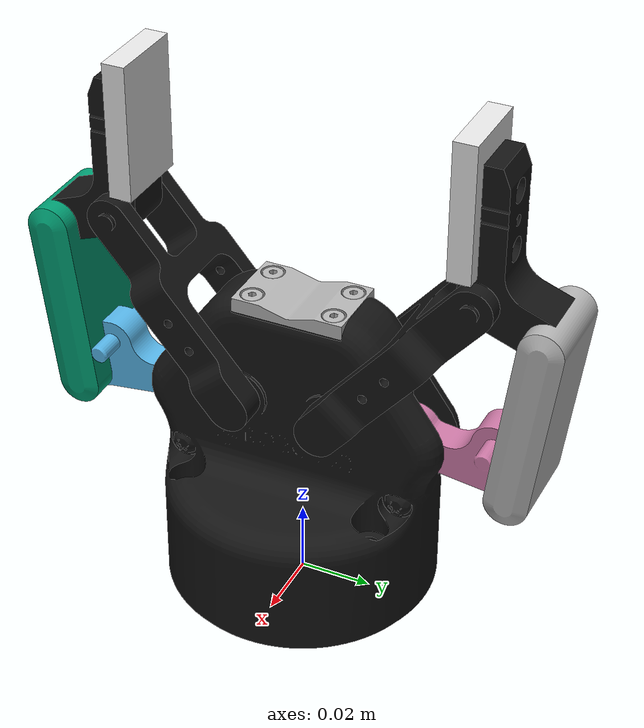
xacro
<?xml version="1.0"?>

<robot name="Robotiq85" xmlns:xacro="http://www.ros.org/wiki/xacro">

  <xacro:arg name="type" default="85"/>

  <!-- 根据type参数决定使用哪种夹爪 -->
  <xacro:if value="${'$(arg type)' == '85'}">
    <xacro:include filename="$(find robotiq_description)/xacro/robotiq85.xacro"/>
    <xacro:Robotiq85 name=""/>
  </xacro:if>
</robot>

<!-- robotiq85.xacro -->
<robot xmlns:xacro="http://www.ros.org/wiki/xacro">
  <xacro:macro name="Robotiq85" params="name">
    <xacro:property name="prefix" value="${name + '_' if name else ''}"/>
    <link name="${prefix}base_link">
      <inertial>
        <origin xyz="8.625E-08 -4.6583E-06 0.03145"/>
        <mass value="0.22652"/>
        <inertia ixx="0.00020005" ixy="-4.2442E-10" ixz="-2.9069E-10" iyy="0.00017832" iyz="-3.4402E-08"
                 izz="0.00013478"/>
      </inertial>
      <visual>
        <geometry>
          <mesh filename="file://$(find robotiq_description)/meshes/robotiq85/visual/base_link.dae"/>
        </geometry>
      </visual>
      <collision>
        <geometry>
          <mesh filename="file://$(find robotiq_description)/meshes/robotiq85/collision/base_link.stl"/>
        </geometry>
        <material name="black">
          <color rgba="0.1 0.1 0.1 1"/>
        </material>
      </collision>
    </link>

    <link name="left_outer_knuckle">
      <inertial>
        <origin xyz="-0.000200000000003065 0.0199435877845359 0.0292245259211331"/>
        <mass value="0.00853198276973456"/>
        <inertia ixx="2.89328108496468E-06" ixy="-1.57935047237397E-19" ixz="-1.93980378593255E-19"
                 iyy="1.86719750325683E-06" iyz="-1.21858577871576E-06" izz="1.21905238907251E-06"/>
      </inertial>
      <visual>
        <geometry>
          <mesh filename="file://$(find robotiq_description)/meshes/robotiq85/visual/outer_knuckle.dae"/>
        </geometry>
      </visual>
      <collision>
        <geometry>
          <mesh filename="file://$(find robotiq_description)/meshes/robotiq85/collision/outer_knuckle.dae"/>
        </geometry>
      </collision>
    </link>

    <link name="left_outer_finger">
      <inertial>
        <origin xyz="0.00030115855001899 0.0373907951953854 -0.0208027427000385"/>
        <mass value="0.022614240507152"/>
        <inertia ixx="1.52518312458174E-05" ixy="9.76583423954399E-10" ixz="-5.43838577022588E-10"
                 iyy="6.17694243867776E-06" iyz="6.78636130740228E-06" izz="1.16494917907219E-05"/>
      </inertial>
      <visual>
        <geometry>
          <mesh filename="file://$(find robotiq_description)/meshes/robotiq85/visual/outer_finger.dae"/>
        </geometry>
      </visual>
      <collision>
        <geometry>
          <mesh filename="file://$(find robotiq_description)/meshes/robotiq85/collision/outer_finger.dae"/>
        </geometry>
      </collision>
    </link>

    <link name="left_inner_finger">
      <inertial>
        <origin xyz="0.000299999999999317 0.0160078233491243 -0.0136945669206257"/>
        <mass value="0.0104003125914103"/>
        <inertia ixx="2.71909453810972E-06" ixy="1.35402465472579E-21" ixz="-7.1817349065269E-22"
                 iyy="7.69100314106116E-07" iyz="6.74715432769696E-07" izz="2.30315190420171E-06"/>
      </inertial>
      <visual>
        <geometry>
          <mesh filename="file://$(find robotiq_description)/meshes/robotiq85/visual/inner_finger.dae"/>
        </geometry>
      </visual>
      <collision>
        <geometry>
          <mesh filename="file://$(find robotiq_description)/meshes/robotiq85/collision/inner_finger.dae"/>
        </geometry>
      </collision>
    </link>
    <link name="left_inner_finger_pad">
      <visual>
        <geometry>
          <box size="0.022 0.00635 0.0375"/>
        </geometry>
        <material name="white">
          <color rgba="0.9 0.9 0.9 1"/>
        </material>
      </visual>
      <collision>
        <geometry>
          <box size="0.022 0.00635 0.0375"/>
        </geometry>
      </collision>
    </link>

    <link name="left_inner_knuckle">
      <inertial>
        <origin xyz="0.000123011831763771 0.0507850843201817 0.00103968640075166"/>
        <mass value="0.0271177346495152"/>
        <inertia ixx="2.61910379223783E-05" ixy="-2.43616858946494E-07" ixz="-6.37789906117123E-09"
                 iyy="2.8270243746167E-06" iyz="-5.37200748039765E-07" izz="2.83695868220296E-05"/>
      </inertial>
      <visual>
        <geometry>
          <mesh filename="file://$(find robotiq_description)/meshes/robotiq85/visual/inner_knuckle.dae"/>
        </geometry>
      </visual>
      <collision>
        <geometry>
          <mesh filename="file://$(find robotiq_description)/meshes/robotiq85/collision/inner_knuckle.dae"/>
        </geometry>
      </collision>
    </link>

    <link name="right_outer_knuckle">
      <inertial>
        <origin xyz="-0.000200000000003065 0.0199435877845359 0.0292245259211331"/>
        <mass value="0.00853198276973456"/>
        <inertia ixx="2.89328108496468E-06" ixy="-1.57935047237397E-19" ixz="-1.93980378593255E-19"
                 iyy="1.86719750325683E-06" iyz="-1.21858577871576E-06" izz="1.21905238907251E-06"/>
      </inertial>
      <visual>
        <geometry>
          <mesh filename="file://$(find robotiq_description)/meshes/robotiq85/visual/outer_knuckle.dae"/>
        </geometry>
      </visual>
      <collision>
        <geometry>
          <mesh filename="file://$(find robotiq_description)/meshes/robotiq85/collision/outer_knuckle.dae"/>
        </geometry>
      </collision>
    </link>

    <link name="right_outer_finger">
      <inertial>
        <origin xyz="0.00030115855001899 0.0373907951953854 -0.0208027427000385"/>
        <mass value="0.022614240507152"/>
        <inertia ixx="1.52518312458174E-05" ixy="9.76583423954399E-10" ixz="-5.43838577022588E-10"
                 iyy="6.17694243867776E-06" iyz="6.78636130740228E-06" izz="1.16494917907219E-05"/>
      </inertial>
      <visual>
        <geometry>
          <mesh filename="file://$(find robotiq_description)/meshes/robotiq85/visual/outer_finger.dae"/>
        </geometry>
      </visual>
      <collision>
        <geometry>
          <mesh filename="file://$(find robotiq_description)/meshes/robotiq85/collision/outer_finger.dae"/>
        </geometry>
      </collision>
    </link>

    <link name="right_inner_finger">
      <inertial>
        <origin xyz="0.000299999999999317 0.0160078233491243 -0.0136945669206257"/>
        <mass value="0.0104003125914103"/>
        <inertia ixx="2.71909453810972E-06" ixy="1.35402465472579E-21" ixz="-7.1817349065269E-22"
                 iyy="7.69100314106116E-07" iyz="6.74715432769696E-07" izz="2.30315190420171E-06"/>
      </inertial>
      <visual>
        <geometry>
          <mesh filename="file://$(find robotiq_description)/meshes/robotiq85/visual/inner_finger.dae"/>
        </geometry>
      </visual>
      <collision>
        <geometry>
          <mesh filename="file://$(find robotiq_description)/meshes/robotiq85/collision/inner_finger.dae"/>
        </geometry>
      </collision>
    </link>

    <link name="right_inner_finger_pad">
      <visual>
        <geometry>
          <box size="0.022 0.00635 0.0375"/>
        </geometry>
        <material name="white">
          <color rgba="0.9 0.9 0.9 1"/>
        </material>
      </visual>
      <collision>
        <geometry>
          <box size="0.022 0.00635 0.0375"/>
        </geometry>
      </collision>
    </link>

    <link name="right_inner_knuckle">
      <inertial>
        <origin xyz="0.000123011831763771 0.0507850843201817 0.00103968640075166"/>
        <mass value="0.0271177346495152"/>
        <inertia ixx="2.61910379223783E-05" ixy="-2.43616858946494E-07" ixz="-6.37789906117123E-09"
                 iyy="2.8270243746167E-06" iyz="-5.37200748039765E-07" izz="2.83695868220296E-05"/>
      </inertial>
      <visual>
        <geometry>
          <mesh filename="file://$(find robotiq_description)/meshes/robotiq85/visual/inner_knuckle.dae"/>
        </geometry>
      </visual>
      <collision>
        <geometry>
          <mesh filename="file://$(find robotiq_description)/meshes/robotiq85/collision/inner_knuckle.dae"/>
        </geometry>
      </collision>
    </link>

    <!-- Main actuated joint - left outer knuckle -->
    <joint name="finger_joint" type="revolute">
      <origin rpy="0 0 3.14159265359" xyz="0 -0.0306011 0.054904"/>
      <parent link="${prefix}base_link"/>
      <child link="left_outer_knuckle"/>
      <axis xyz="1 0 0"/>
      <limit effort="1000" lower="0" upper="0.81" velocity="2.0"/>
    </joint>

    <joint name="left_outer_finger_joint" type="fixed">
      <origin xyz="0 0.0315 -0.0041"/>
      <parent link="left_outer_knuckle"/>
      <child link="left_outer_finger"/>
      <axis xyz="1 0 0"/>
    </joint>

    <!-- Left inner knuckle mimics the outer knuckle with a mechanical coupling -->
    <joint name="left_inner_knuckle_joint" type="revolute">
      <origin rpy="0 0 3.14159265359" xyz="0 -0.0127 0.06142"/>
      <parent link="${prefix}base_link"/>
      <child link="left_inner_knuckle"/>
      <axis xyz="1 0 0"/>
      <limit effort="1000" lower="0" upper="0.8757" velocity="2.0"/>
      <mimic joint="finger_joint" multiplier="1" offset="0"/>
    </joint>

    <!-- Left inner finger has opposite motion to simulate the mechanical linkage -->
    <joint name="left_inner_finger_joint" type="revolute">
      <origin xyz="0 0.0061 0.0471"/>
      <parent link="left_outer_finger"/>
      <child link="left_inner_finger"/>
      <axis xyz="1 0 0"/>
      <limit effort="1000" lower="-0.8757" upper="0" velocity="2.0"/>
      <mimic joint="finger_joint" multiplier="-1" offset="0"/>
    </joint>

    <joint name="left_inner_finger_pad_joint" type="fixed">
      <origin xyz="0 -0.0220203446692936 0.03242"/>
      <parent link="left_inner_finger"/>
      <child link="left_inner_finger_pad"/>
      <axis xyz="0 0 1"/>
    </joint>

    <!-- Right side joints mimic the left side with opposite motion -->
    <joint name="right_outer_knuckle_joint" type="revolute">
      <origin xyz="0 0.0306011 0.054904"/>
      <parent link="${prefix}base_link"/>
      <child link="right_outer_knuckle"/>
      <axis xyz="1 0 0"/>
      <limit effort="1000" lower="0" upper="0.81" velocity="2.0"/>
      <mimic joint="finger_joint" multiplier="1" offset="0"/>
    </joint>

    <joint name="right_outer_finger_joint" type="fixed">
      <origin xyz="0 0.0315 -0.0041"/>
      <parent link="right_outer_knuckle"/>
      <child link="right_outer_finger"/>
      <axis xyz="1 0 0"/>
    </joint>

    <joint name="right_inner_knuckle_joint" type="revolute">
      <origin rpy="0 0 0.0" xyz="0 0.0127 0.06142"/>
      <parent link="${prefix}base_link"/>
      <child link="right_inner_knuckle"/>
      <axis xyz="1 0 0"/>
      <limit effort="1000" lower="0" upper="0.8757" velocity="2.0"/>
      <mimic joint="finger_joint" multiplier="1" offset="0"/>
    </joint>

    <joint name="right_inner_finger_joint" type="revolute">
      <origin xyz="0 0.0061 0.0471"/>
      <parent link="right_outer_finger"/>
      <child link="right_inner_finger"/>
      <axis xyz="1 0 0"/>
      <limit effort="1000" lower="-0.8757" upper="0" velocity="2.0"/>
      <mimic joint="finger_joint" multiplier="-1" offset="0"/>
    </joint>

    <joint name="right_inner_finger_pad_joint" type="fixed">
      <origin xyz="0 -0.0220203446692936 0.03242"/>
      <parent link="right_inner_finger"/>
      <child link="right_inner_finger_pad"/>
      <axis xyz="0 0 1"/>
    </joint>
  </xacro:macro>
</robot>
